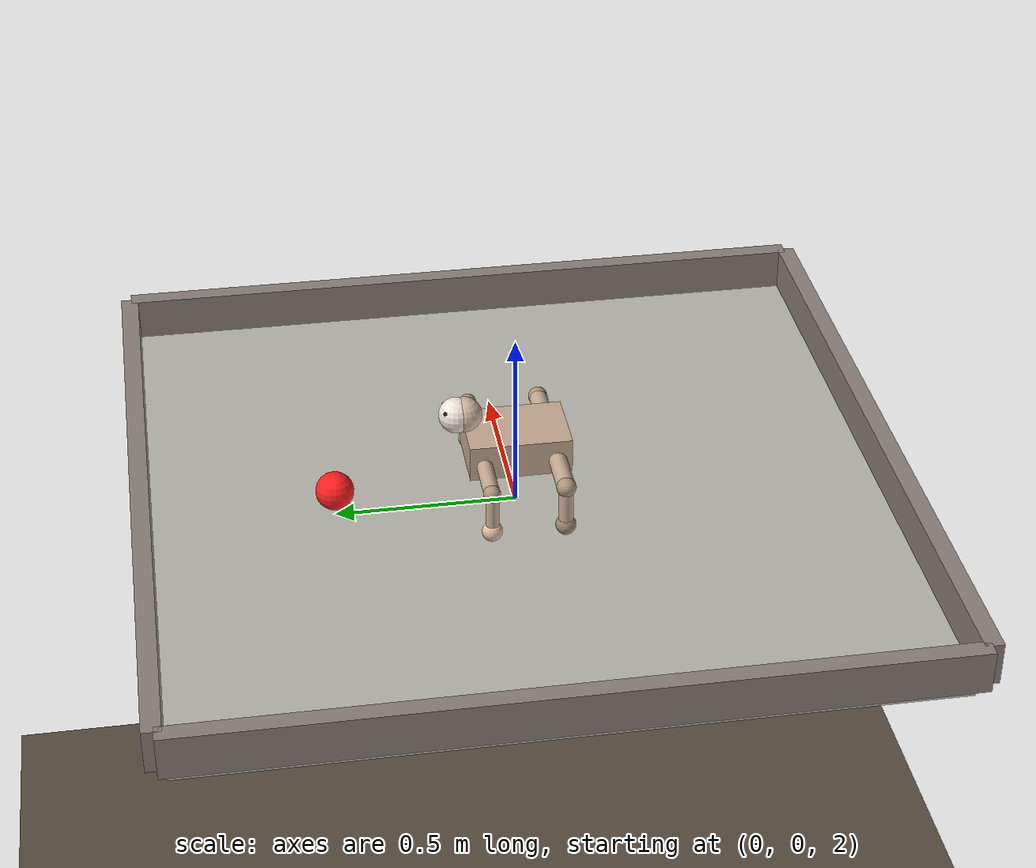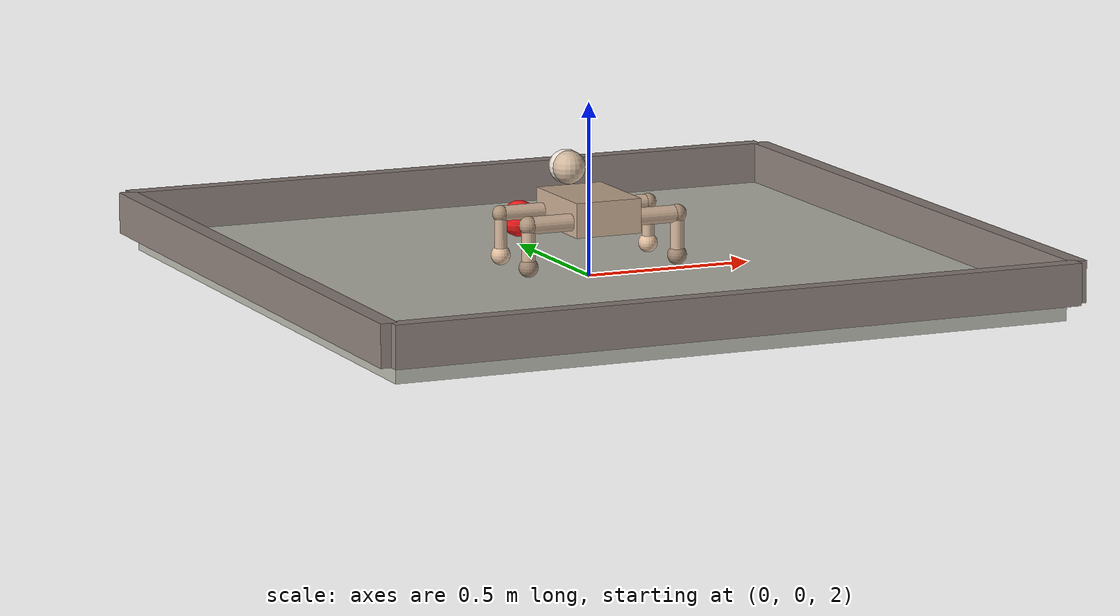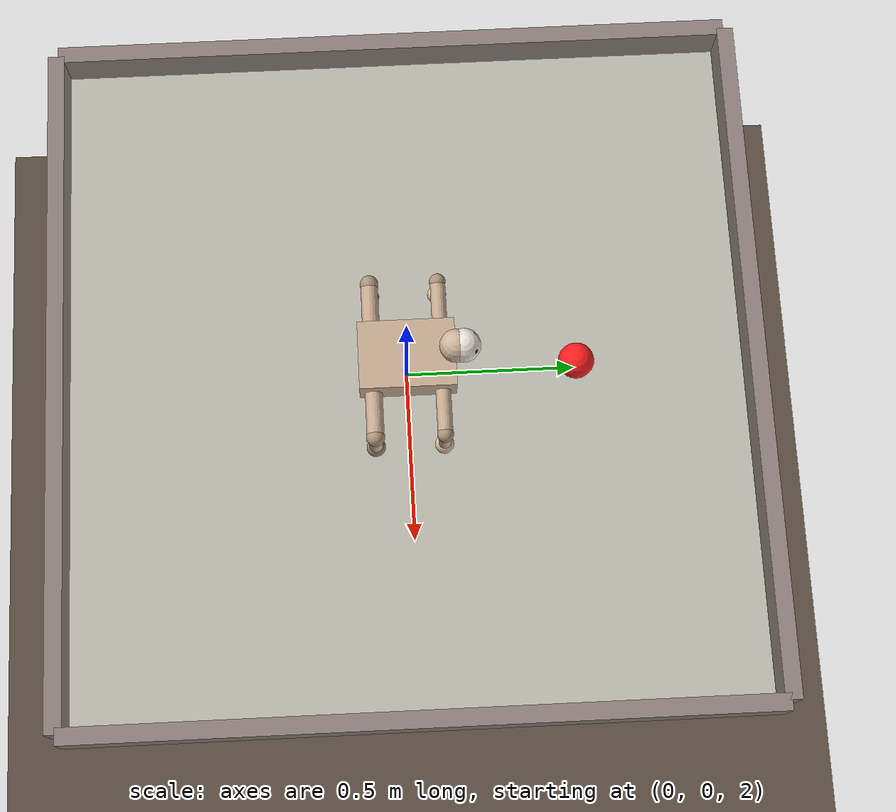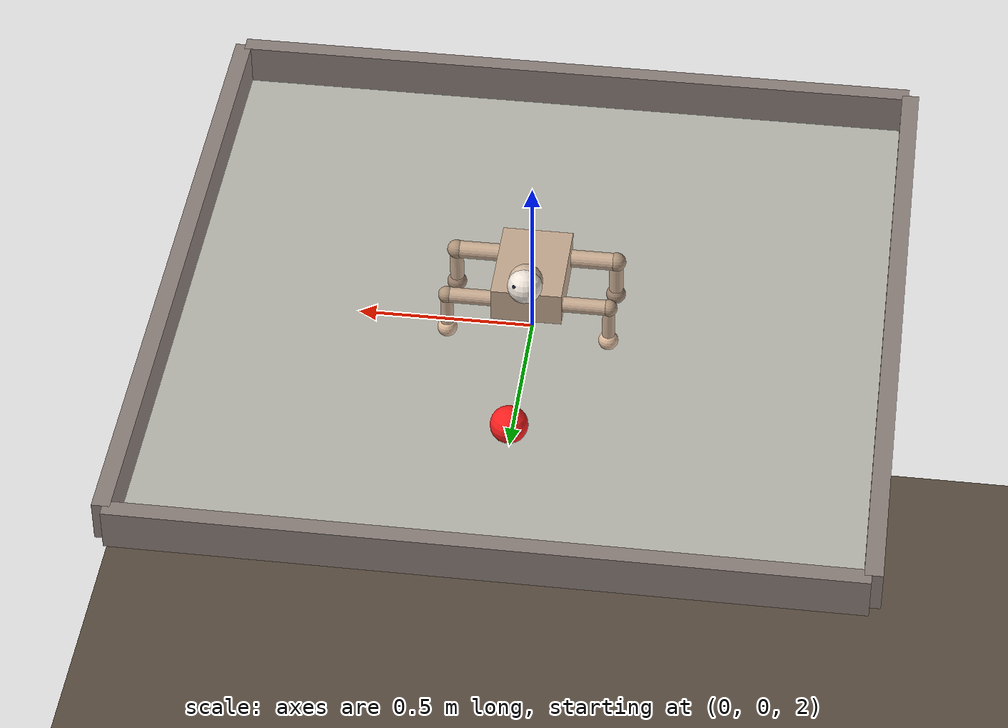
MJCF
<mujoco model="crawler">
  <compiler angle="radian" inertiafromgeom="true"/>
  <option gravity="0 0 -9.81" integrator="Euler" timestep="0.01" cone="elliptic"/>

  <default>
    <joint armature="0.05" damping="1.5" limited="true"/>
    <geom contype="1" conaffinity="1" friction="0.8 0.3 0.1"/>
  </default>

  <asset>
    <texture builtin="flat" height="100" name="texplatform" rgb1="0.72 0.72 0.68" rgb2="0.72 0.72 0.68" type="2d" width="100"/>
    <material name="MatPlatform" texture="texplatform"/>
    <texture builtin="flat" height="100" name="texground" rgb1="0.35 0.30 0.25" rgb2="0.35 0.30 0.25" type="2d" width="100"/>
    <material name="MatGround" texture="texground"/>
    <texture builtin="flat" height="100" name="texwall" rgb1="0.55 0.50 0.48" rgb2="0.55 0.50 0.48" type="2d" width="100"/>
    <material name="MatWall" texture="texwall"/>
  </asset>

  <worldbody>
    <light cutoff="100" diffuse="1 1 1" dir="0 0 -1" directional="true" pos="0 0 5" specular="0.2 0.2 0.2"/>

    <!-- Ground -->
    <geom name="ground" type="plane" size="10 10 0.1" pos="0 0 0" material="MatGround"
          conaffinity="1" contype="1"/>

    <!-- Platform: 2m x 2m, 5cm thick, top surface at z=2.025 -->
    <geom name="platform" type="box" size="1.0 1.0 0.025" pos="0 0 2.0"
          material="MatPlatform" conaffinity="1" contype="1"
          friction="0.9 0.3 0.1"/>

    <!-- Guardrails: low walls (12cm tall) around platform perimeter.
         Crawler bumps and bounces back — no fall termination. -->
    <geom name="rail_N" type="box" size="1.02 0.025 0.06" pos="0  1.025 2.085"
          material="MatWall" conaffinity="1" contype="1"/>
    <geom name="rail_S" type="box" size="1.02 0.025 0.06" pos="0 -1.025 2.085"
          material="MatWall" conaffinity="1" contype="1"/>
    <geom name="rail_E" type="box" size="0.025 1.02 0.06" pos=" 1.025 0 2.085"
          material="MatWall" conaffinity="1" contype="1"/>
    <geom name="rail_W" type="box" size="0.025 1.02 0.06" pos="-1.025 0 2.085"
          material="MatWall" conaffinity="1" contype="1"/>

    <body name="torso" pos="0 0 2.19">
      <joint name="root" type="free" armature="0" damping="0" limited="false"/>
      <!-- Torso: wide front-to-back, skin-colored box -->
      <geom name="torso_geom" type="box" size="0.10 0.14 0.05"
            rgba="0.78 0.67 0.57 1" density="500"
            contype="1" conaffinity="1"/>

      <!-- ====== FRONT-LEFT ARM ====== -->
      <!-- Shoulder at front-left corner of torso, just below midline -->
      <body name="fl_shoulder" pos="-0.10 0.10 -0.01">
        <!-- Pitch: swings arm in X-Z plane (crawl stroke: push back, lift forward) -->
        <joint name="fl_shoulder_pitch" type="hinge" axis="0 1 0"
               range="-1.4 1.4"/>
        <!-- Yaw: swings arm in horizontal plane (steer left/right) -->
        <joint name="fl_shoulder_yaw" type="hinge" axis="0 0 1"
               range="-0.8 0.8"/>
        <!-- Upper arm: horizontal, pointing outward (-X).
             At qpos=0 this gives the hands-and-knees silhouette. -->
        <geom name="fl_upper_arm" type="capsule" fromto="0 0 0 -0.13 0 0"
              size="0.022" rgba="0.78 0.67 0.57 1"/>

        <body name="fl_forearm" pos="-0.13 0 0">
          <!-- Elbow: bends forearm down/back -->
          <joint name="fl_elbow" type="hinge" axis="0 1 0"
                 range="-0.2 2.2"/>
          <!-- Forearm: vertical, pointing down at qpos=0 -->
          <geom name="fl_forearm_geom" type="capsule" fromto="0 0 0 0 0 -0.12"
                size="0.018" rgba="0.78 0.67 0.57 1"/>
          <!-- Elbow knob (visual) -->
          <geom name="fl_elbow_knob" type="sphere" size="0.024"
                rgba="0.68 0.58 0.48 1" contype="0" conaffinity="0"/>

          <body name="fl_hand" pos="0 0 -0.12">
            <geom name="fl_hand_geom" type="sphere" size="0.028"
                  rgba="0.88 0.74 0.62 1" contype="1" conaffinity="1"
                  friction="1.5 0.5 0.1"/>
            <site name="fl_hand_site" pos="0 0 0" size="0.03" rgba="0 0 0 0"/>
          </body>
        </body>
      </body>

      <!-- ====== FRONT-RIGHT ARM ====== -->
      <body name="fr_shoulder" pos="0.10 0.10 -0.01">
        <joint name="fr_shoulder_pitch" type="hinge" axis="0 1 0"
               range="-1.4 1.4"/>
        <joint name="fr_shoulder_yaw" type="hinge" axis="0 0 1"
               range="-0.8 0.8"/>
        <geom name="fr_upper_arm" type="capsule" fromto="0 0 0 0.13 0 0"
              size="0.022" rgba="0.78 0.67 0.57 1"/>

        <body name="fr_forearm" pos="0.13 0 0">
          <joint name="fr_elbow" type="hinge" axis="0 1 0"
                 range="-0.2 2.2"/>
          <geom name="fr_forearm_geom" type="capsule" fromto="0 0 0 0 0 -0.12"
                size="0.018" rgba="0.78 0.67 0.57 1"/>
          <geom name="fr_elbow_knob" type="sphere" size="0.024"
                rgba="0.68 0.58 0.48 1" contype="0" conaffinity="0"/>

          <body name="fr_hand" pos="0 0 -0.12">
            <geom name="fr_hand_geom" type="sphere" size="0.028"
                  rgba="0.88 0.74 0.62 1" contype="1" conaffinity="1"
                  friction="1.5 0.5 0.1"/>
            <site name="fr_hand_site" pos="0 0 0" size="0.03" rgba="0 0 0 0"/>
          </body>
        </body>
      </body>

      <!-- ====== REAR-LEFT LEG ====== -->
      <body name="rl_hip" pos="-0.10 -0.10 -0.01">
        <joint name="rl_hip_pitch" type="hinge" axis="0 1 0"
               range="-1.4 1.4"/>
        <joint name="rl_hip_yaw" type="hinge" axis="0 0 1"
               range="-0.7 0.7"/>
        <geom name="rl_thigh" type="capsule" fromto="0 0 0 -0.13 0 0"
              size="0.025" rgba="0.78 0.67 0.57 1"/>

        <body name="rl_shin" pos="-0.13 0 0">
          <joint name="rl_knee" type="hinge" axis="0 1 0"
                 range="-0.2 2.2"/>
          <geom name="rl_shin_geom" type="capsule" fromto="0 0 0 0 0 -0.12"
                size="0.020" rgba="0.78 0.67 0.57 1"/>
          <geom name="rl_knee_knob" type="sphere" size="0.027"
                rgba="0.68 0.58 0.48 1" contype="0" conaffinity="0"/>

          <body name="rl_foot" pos="0 0 -0.12">
            <geom name="rl_foot_geom" type="sphere" size="0.028"
                  rgba="0.62 0.52 0.44 1" contype="1" conaffinity="1"
                  friction="1.5 0.5 0.1"/>
            <site name="rl_foot_site" pos="0 0 0" size="0.03" rgba="0 0 0 0"/>
          </body>
        </body>
      </body>

      <!-- ====== REAR-RIGHT LEG ====== -->
      <body name="rr_hip" pos="0.10 -0.10 -0.01">
        <joint name="rr_hip_pitch" type="hinge" axis="0 1 0"
               range="-1.4 1.4"/>
        <joint name="rr_hip_yaw" type="hinge" axis="0 0 1"
               range="-0.7 0.7"/>
        <geom name="rr_thigh" type="capsule" fromto="0 0 0 0.13 0 0"
              size="0.025" rgba="0.78 0.67 0.57 1"/>

        <body name="rr_shin" pos="0.13 0 0">
          <joint name="rr_knee" type="hinge" axis="0 1 0"
                 range="-0.2 2.2"/>
          <geom name="rr_shin_geom" type="capsule" fromto="0 0 0 0 0 -0.12"
                size="0.020" rgba="0.78 0.67 0.57 1"/>
          <geom name="rr_knee_knob" type="sphere" size="0.027"
                rgba="0.68 0.58 0.48 1" contype="0" conaffinity="0"/>

          <body name="rr_foot" pos="0 0 -0.12">
            <geom name="rr_foot_geom" type="sphere" size="0.028"
                  rgba="0.62 0.52 0.44 1" contype="1" conaffinity="1"
                  friction="1.5 0.5 0.1"/>
            <site name="rr_foot_site" pos="0 0 0" size="0.03" rgba="0 0 0 0"/>
          </body>
        </body>
      </body>

      <!-- ====== HEAD with stereo eyes ====== -->
      <body name="head_base" pos="0 0.14 0.05">
        <joint name="head_pan" type="hinge" axis="0 0 1"
               range="-1.2 1.2"/>
        <geom name="head_base_pivot" type="sphere" size="0.005"
              rgba="0 0 0 0" contype="0" conaffinity="0" density="10"/>

        <body name="head" pos="0 0 0.05">
          <joint name="head_tilt" type="hinge" axis="1 0 0"
                 range="-0.6 0.6"/>
          <!-- Head sphere -->
          <geom name="head_geom" type="sphere" size="0.048"
                rgba="0.82 0.72 0.62 1" contype="0" conaffinity="0"/>
          <!-- Face: lighter patch on front -->
          <geom name="face" type="sphere" size="0.049"
                pos="0 0.022 0" rgba="0.94 0.90 0.86 1"
                contype="0" conaffinity="0"/>
          <!-- Nose -->
          <geom name="nose" type="sphere" size="0.011"
                pos="0 0.052 -0.010" rgba="0.86 0.62 0.58 1"
                contype="0" conaffinity="0"/>
          <!-- Left eye pupil -->
          <geom name="eye_L" type="sphere" size="0.010"
                pos="0.022 0.050 0.018" rgba="0.08 0.08 0.15 1"
                contype="0" conaffinity="0"/>
          <!-- Right eye pupil -->
          <geom name="eye_R" type="sphere" size="0.010"
                pos="-0.022 0.050 0.018" rgba="0.08 0.08 0.15 1"
                contype="0" conaffinity="0"/>

          <!-- Stereo cameras: 5cm apart, 15° downward gaze, wide 90° FOV.
               xyaxes row1=camera-right, row2=camera-up (world coords tilted). -->
          <camera name="left_eye"  pos=" 0.022 0.050 0.018"
                  xyaxes="1 0 0  0 0.259 0.966" fovy="90"/>
          <camera name="right_eye" pos="-0.022 0.050 0.018"
                  xyaxes="1 0 0  0 0.259 0.966" fovy="90"/>
        </body>
      </body>

      <!-- Torso contact site -->
      <site name="torso_site" pos="0 0 0" size="0.11 0.15 0.06"
            type="box" rgba="0 0 0 0"/>
    </body>

    <!-- ============================================================
         TARGET BALL — bright red, slightly larger for stereo visibility
    ============================================================ -->
    <body name="target" pos="0 0.5 2.078">
      <joint name="target_free" type="free" armature="0" damping="0"/>
      <geom name="target_geom" type="sphere" size="0.053"
            rgba="1 0.12 0.12 1" contype="1" conaffinity="1" density="150"
            friction="0.8 0.3 0.1"/>
    </body>

    <!-- Observer cameras -->
    <camera name="overhead" pos="0 0 5.5" xyaxes="1 0 0 0 1 0" fovy="55"/>
    <camera name="ringside" pos="0 -2.5 2.4" xyaxes="1 0 0 0 0.12 0.993" fovy="45"/>
  </worldbody>

  <!-- ============================================================
       ACTUATORS — all torque-controlled except head (position servo)
  ============================================================ -->
  <actuator>
    <!-- Front-left arm -->
    <motor name="fl_shoulder_pitch_m" joint="fl_shoulder_pitch"
           ctrllimited="true" ctrlrange="-1 1" gear="20"/>
    <motor name="fl_shoulder_yaw_m"   joint="fl_shoulder_yaw"
           ctrllimited="true" ctrlrange="-1 1" gear="14"/>
    <motor name="fl_elbow_m"          joint="fl_elbow"
           ctrllimited="true" ctrlrange="-1 1" gear="16"/>
    <!-- Front-right arm -->
    <motor name="fr_shoulder_pitch_m" joint="fr_shoulder_pitch"
           ctrllimited="true" ctrlrange="-1 1" gear="20"/>
    <motor name="fr_shoulder_yaw_m"   joint="fr_shoulder_yaw"
           ctrllimited="true" ctrlrange="-1 1" gear="14"/>
    <motor name="fr_elbow_m"          joint="fr_elbow"
           ctrllimited="true" ctrlrange="-1 1" gear="16"/>
    <!-- Rear-left leg -->
    <motor name="rl_hip_pitch_m"  joint="rl_hip_pitch"
           ctrllimited="true" ctrlrange="-1 1" gear="22"/>
    <motor name="rl_hip_yaw_m"    joint="rl_hip_yaw"
           ctrllimited="true" ctrlrange="-1 1" gear="14"/>
    <motor name="rl_knee_m"       joint="rl_knee"
           ctrllimited="true" ctrlrange="-1 1" gear="18"/>
    <!-- Rear-right leg -->
    <motor name="rr_hip_pitch_m"  joint="rr_hip_pitch"
           ctrllimited="true" ctrlrange="-1 1" gear="22"/>
    <motor name="rr_hip_yaw_m"    joint="rr_hip_yaw"
           ctrllimited="true" ctrlrange="-1 1" gear="14"/>
    <motor name="rr_knee_m"       joint="rr_knee"
           ctrllimited="true" ctrlrange="-1 1" gear="18"/>
    <!-- Head: position-servo, slow (kp=5) -->
    <position name="head_pan_m"  joint="head_pan"
              ctrllimited="true" ctrlrange="-1.2 1.2" kp="5"/>
    <position name="head_tilt_m" joint="head_tilt"
              ctrllimited="true" ctrlrange="-0.6 0.6" kp="5"/>
  </actuator>

  <!-- ============================================================
       SENSORS
  ============================================================ -->
  <sensor>
    <jointpos name="fl_shoulder_pitch_pos" joint="fl_shoulder_pitch"/>
    <jointpos name="fl_shoulder_yaw_pos"   joint="fl_shoulder_yaw"/>
    <jointpos name="fl_elbow_pos"          joint="fl_elbow"/>
    <jointpos name="fr_shoulder_pitch_pos" joint="fr_shoulder_pitch"/>
    <jointpos name="fr_shoulder_yaw_pos"   joint="fr_shoulder_yaw"/>
    <jointpos name="fr_elbow_pos"          joint="fr_elbow"/>
    <jointpos name="rl_hip_pitch_pos"      joint="rl_hip_pitch"/>
    <jointpos name="rl_hip_yaw_pos"        joint="rl_hip_yaw"/>
    <jointpos name="rl_knee_pos"           joint="rl_knee"/>
    <jointpos name="rr_hip_pitch_pos"      joint="rr_hip_pitch"/>
    <jointpos name="rr_hip_yaw_pos"        joint="rr_hip_yaw"/>
    <jointpos name="rr_knee_pos"           joint="rr_knee"/>
    <jointpos name="head_pan_pos"          joint="head_pan"/>
    <jointpos name="head_tilt_pos"         joint="head_tilt"/>

    <jointvel name="fl_shoulder_pitch_vel" joint="fl_shoulder_pitch"/>
    <jointvel name="fl_shoulder_yaw_vel"   joint="fl_shoulder_yaw"/>
    <jointvel name="fl_elbow_vel"          joint="fl_elbow"/>
    <jointvel name="fr_shoulder_pitch_vel" joint="fr_shoulder_pitch"/>
    <jointvel name="fr_shoulder_yaw_vel"   joint="fr_shoulder_yaw"/>
    <jointvel name="fr_elbow_vel"          joint="fr_elbow"/>
    <jointvel name="rl_hip_pitch_vel"      joint="rl_hip_pitch"/>
    <jointvel name="rl_hip_yaw_vel"        joint="rl_hip_yaw"/>
    <jointvel name="rl_knee_vel"           joint="rl_knee"/>
    <jointvel name="rr_hip_pitch_vel"      joint="rr_hip_pitch"/>
    <jointvel name="rr_hip_yaw_vel"        joint="rr_hip_yaw"/>
    <jointvel name="rr_knee_vel"           joint="rr_knee"/>

    <touch name="fl_hand_touch"  site="fl_hand_site"/>
    <touch name="fr_hand_touch"  site="fr_hand_site"/>
    <touch name="rl_foot_touch"  site="rl_foot_site"/>
    <touch name="rr_foot_touch"  site="rr_foot_site"/>
    <touch name="torso_touch"    site="torso_site"/>
  </sensor>
</mujoco>
